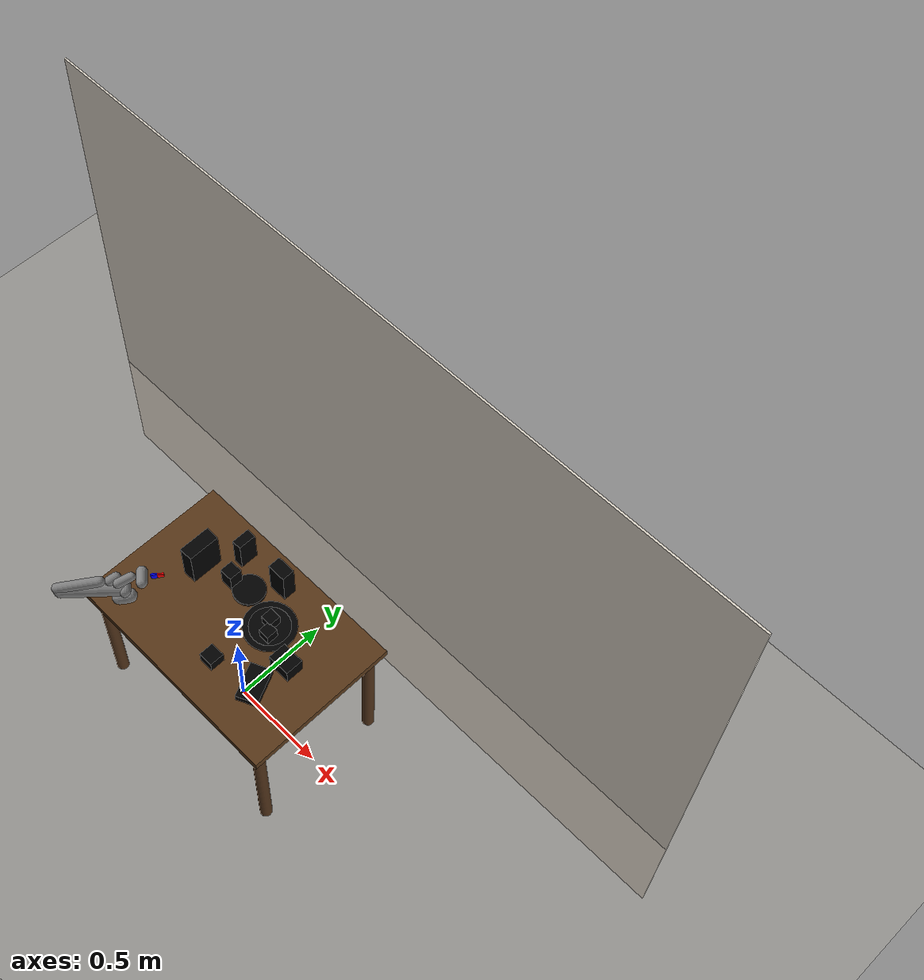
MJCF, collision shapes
<mujoco model="scenecraft_piper">
  <compiler angle="radian"/>
  <option timestep="0.0005" gravity="0 0 -9.81" integrator="implicitfast" cone="elliptic" impratio="10" noslip_iterations="5"/>
  <default>
    <default class="piper">
      <joint armature="0.005" frictionloss="0.3" />
      <general forcerange="-100 100" biastype="affine" biasprm="0 -1" />
      <default class="finger">
        <joint type="slide" frictionloss="0" />
        <general forcerange="-10 10" />
      </default>
      <default class="visual">
        <geom type="mesh" contype="0" conaffinity="0" group="2" density="0" />
      </default>
      <default class="collision">
        <geom type="capsule" group="3" />
      </default>
    </default>
  </default>

  <visual><global offwidth="1920" offheight="1440"/><headlight diffuse="0.55 0.55 0.55" ambient="0.38 0.38 0.38" specular="0.25 0.25 0.25"/><quality shadowsize="4096"/></visual>
  <asset>
    <mesh name="link2_0" content_type="model/obj" file="/root/.openclaw/workspace-lab/scene-gen/data/assets/mujoco_menagerie/agilex_piper/assets/link2_0.obj" />

    <mesh name="link2_1" content_type="model/obj" file="/root/.openclaw/workspace-lab/scene-gen/data/assets/mujoco_menagerie/agilex_piper/assets/link2_1.obj" />

    <mesh name="link2_2" content_type="model/obj" file="/root/.openclaw/workspace-lab/scene-gen/data/assets/mujoco_menagerie/agilex_piper/assets/link2_2.obj" />

    <mesh name="link2_3" content_type="model/obj" file="/root/.openclaw/workspace-lab/scene-gen/data/assets/mujoco_menagerie/agilex_piper/assets/link2_3.obj" />

    <mesh name="link2_4" content_type="model/obj" file="/root/.openclaw/workspace-lab/scene-gen/data/assets/mujoco_menagerie/agilex_piper/assets/link2_4.obj" />

    <mesh name="link2_5" content_type="model/obj" file="/root/.openclaw/workspace-lab/scene-gen/data/assets/mujoco_menagerie/agilex_piper/assets/link2_5.obj" />

    <mesh name="link2_6" content_type="model/obj" file="/root/.openclaw/workspace-lab/scene-gen/data/assets/mujoco_menagerie/agilex_piper/assets/link2_6.obj" />

    <mesh name="link2_7" content_type="model/obj" file="/root/.openclaw/workspace-lab/scene-gen/data/assets/mujoco_menagerie/agilex_piper/assets/link2_7.obj" />

    <mesh name="link2_8" content_type="model/obj" file="/root/.openclaw/workspace-lab/scene-gen/data/assets/mujoco_menagerie/agilex_piper/assets/link2_8.obj" />

    <mesh name="link2_9" content_type="model/obj" file="/root/.openclaw/workspace-lab/scene-gen/data/assets/mujoco_menagerie/agilex_piper/assets/link2_9.obj" />

    <mesh name="link2_10" content_type="model/obj" file="/root/.openclaw/workspace-lab/scene-gen/data/assets/mujoco_menagerie/agilex_piper/assets/link2_10.obj" />

    <mesh name="link2_11" content_type="model/obj" file="/root/.openclaw/workspace-lab/scene-gen/data/assets/mujoco_menagerie/agilex_piper/assets/link2_11.obj" />

    <mesh name="link2_12" content_type="model/obj" file="/root/.openclaw/workspace-lab/scene-gen/data/assets/mujoco_menagerie/agilex_piper/assets/link2_12.obj" />

    <mesh name="link2_13" content_type="model/obj" file="/root/.openclaw/workspace-lab/scene-gen/data/assets/mujoco_menagerie/agilex_piper/assets/link2_13.obj" />

    <mesh name="link2_14" content_type="model/obj" file="/root/.openclaw/workspace-lab/scene-gen/data/assets/mujoco_menagerie/agilex_piper/assets/link2_14.obj" />

    <mesh name="link2_15" content_type="model/obj" file="/root/.openclaw/workspace-lab/scene-gen/data/assets/mujoco_menagerie/agilex_piper/assets/link2_15.obj" />

    <mesh name="link2_16" content_type="model/obj" file="/root/.openclaw/workspace-lab/scene-gen/data/assets/mujoco_menagerie/agilex_piper/assets/link2_16.obj" />

    <mesh name="link2_17" content_type="model/obj" file="/root/.openclaw/workspace-lab/scene-gen/data/assets/mujoco_menagerie/agilex_piper/assets/link2_17.obj" />

    <mesh name="link2_18" content_type="model/obj" file="/root/.openclaw/workspace-lab/scene-gen/data/assets/mujoco_menagerie/agilex_piper/assets/link2_18.obj" />

    <mesh name="link2_19" content_type="model/obj" file="/root/.openclaw/workspace-lab/scene-gen/data/assets/mujoco_menagerie/agilex_piper/assets/link2_19.obj" />

    <mesh name="link2_20" content_type="model/obj" file="/root/.openclaw/workspace-lab/scene-gen/data/assets/mujoco_menagerie/agilex_piper/assets/link2_20.obj" />

    <mesh name="link2_21" content_type="model/obj" file="/root/.openclaw/workspace-lab/scene-gen/data/assets/mujoco_menagerie/agilex_piper/assets/link2_21.obj" />

    <mesh name="link2_22" content_type="model/obj" file="/root/.openclaw/workspace-lab/scene-gen/data/assets/mujoco_menagerie/agilex_piper/assets/link2_22.obj" />

    <mesh name="link2_23" content_type="model/obj" file="/root/.openclaw/workspace-lab/scene-gen/data/assets/mujoco_menagerie/agilex_piper/assets/link2_23.obj" />

    <mesh name="link2_24" content_type="model/obj" file="/root/.openclaw/workspace-lab/scene-gen/data/assets/mujoco_menagerie/agilex_piper/assets/link2_24.obj" />

    <mesh name="link2_25" content_type="model/obj" file="/root/.openclaw/workspace-lab/scene-gen/data/assets/mujoco_menagerie/agilex_piper/assets/link2_25.obj" />

    <mesh name="link2_26" content_type="model/obj" file="/root/.openclaw/workspace-lab/scene-gen/data/assets/mujoco_menagerie/agilex_piper/assets/link2_26.obj" />

    <mesh name="link2_27" content_type="model/obj" file="/root/.openclaw/workspace-lab/scene-gen/data/assets/mujoco_menagerie/agilex_piper/assets/link2_27.obj" />

    <mesh name="link2_28" content_type="model/obj" file="/root/.openclaw/workspace-lab/scene-gen/data/assets/mujoco_menagerie/agilex_piper/assets/link2_28.obj" />

    <mesh name="link2_29" content_type="model/obj" file="/root/.openclaw/workspace-lab/scene-gen/data/assets/mujoco_menagerie/agilex_piper/assets/link2_29.obj" />

    <mesh name="link2_30" content_type="model/obj" file="/root/.openclaw/workspace-lab/scene-gen/data/assets/mujoco_menagerie/agilex_piper/assets/link2_30.obj" />

    <mesh name="link2_31" content_type="model/obj" file="/root/.openclaw/workspace-lab/scene-gen/data/assets/mujoco_menagerie/agilex_piper/assets/link2_31.obj" />

    <mesh name="link3_0" content_type="model/obj" file="/root/.openclaw/workspace-lab/scene-gen/data/assets/mujoco_menagerie/agilex_piper/assets/link3_0.obj" />

    <mesh name="link3_1" content_type="model/obj" file="/root/.openclaw/workspace-lab/scene-gen/data/assets/mujoco_menagerie/agilex_piper/assets/link3_1.obj" />

    <mesh name="link3_2" content_type="model/obj" file="/root/.openclaw/workspace-lab/scene-gen/data/assets/mujoco_menagerie/agilex_piper/assets/link3_2.obj" />

    <mesh name="link3_3" content_type="model/obj" file="/root/.openclaw/workspace-lab/scene-gen/data/assets/mujoco_menagerie/agilex_piper/assets/link3_3.obj" />

    <mesh name="link3_4" content_type="model/obj" file="/root/.openclaw/workspace-lab/scene-gen/data/assets/mujoco_menagerie/agilex_piper/assets/link3_4.obj" />

    <mesh name="link3_5" content_type="model/obj" file="/root/.openclaw/workspace-lab/scene-gen/data/assets/mujoco_menagerie/agilex_piper/assets/link3_5.obj" />

    <mesh name="link3_7" content_type="model/obj" file="/root/.openclaw/workspace-lab/scene-gen/data/assets/mujoco_menagerie/agilex_piper/assets/link3_7.obj" />

    <mesh name="link3_8" content_type="model/obj" file="/root/.openclaw/workspace-lab/scene-gen/data/assets/mujoco_menagerie/agilex_piper/assets/link3_8.obj" />

    <mesh name="link3_9" content_type="model/obj" file="/root/.openclaw/workspace-lab/scene-gen/data/assets/mujoco_menagerie/agilex_piper/assets/link3_9.obj" />

    <mesh name="link3_10" content_type="model/obj" file="/root/.openclaw/workspace-lab/scene-gen/data/assets/mujoco_menagerie/agilex_piper/assets/link3_10.obj" />

    <mesh name="link3_11" content_type="model/obj" file="/root/.openclaw/workspace-lab/scene-gen/data/assets/mujoco_menagerie/agilex_piper/assets/link3_11.obj" />

    <mesh name="link3_12" content_type="model/obj" file="/root/.openclaw/workspace-lab/scene-gen/data/assets/mujoco_menagerie/agilex_piper/assets/link3_12.obj" />

    <mesh name="link3_13" content_type="model/obj" file="/root/.openclaw/workspace-lab/scene-gen/data/assets/mujoco_menagerie/agilex_piper/assets/link3_13.obj" />

    <mesh name="link3_14" content_type="model/obj" file="/root/.openclaw/workspace-lab/scene-gen/data/assets/mujoco_menagerie/agilex_piper/assets/link3_14.obj" />

    <mesh name="link3_15" content_type="model/obj" file="/root/.openclaw/workspace-lab/scene-gen/data/assets/mujoco_menagerie/agilex_piper/assets/link3_15.obj" />

    <mesh name="link3_16" content_type="model/obj" file="/root/.openclaw/workspace-lab/scene-gen/data/assets/mujoco_menagerie/agilex_piper/assets/link3_16.obj" />

    <mesh name="link3_17" content_type="model/obj" file="/root/.openclaw/workspace-lab/scene-gen/data/assets/mujoco_menagerie/agilex_piper/assets/link3_17.obj" />

    <mesh name="link3_18" content_type="model/obj" file="/root/.openclaw/workspace-lab/scene-gen/data/assets/mujoco_menagerie/agilex_piper/assets/link3_18.obj" />

    <mesh name="link3_19" content_type="model/obj" file="/root/.openclaw/workspace-lab/scene-gen/data/assets/mujoco_menagerie/agilex_piper/assets/link3_19.obj" />

    <mesh name="link3_20" content_type="model/obj" file="/root/.openclaw/workspace-lab/scene-gen/data/assets/mujoco_menagerie/agilex_piper/assets/link3_20.obj" />

    <mesh name="link3_21" content_type="model/obj" file="/root/.openclaw/workspace-lab/scene-gen/data/assets/mujoco_menagerie/agilex_piper/assets/link3_21.obj" />

    <mesh name="link3_22" content_type="model/obj" file="/root/.openclaw/workspace-lab/scene-gen/data/assets/mujoco_menagerie/agilex_piper/assets/link3_22.obj" />

    <mesh name="link3_23" content_type="model/obj" file="/root/.openclaw/workspace-lab/scene-gen/data/assets/mujoco_menagerie/agilex_piper/assets/link3_23.obj" />

    <mesh name="link3_24" content_type="model/obj" file="/root/.openclaw/workspace-lab/scene-gen/data/assets/mujoco_menagerie/agilex_piper/assets/link3_24.obj" />

    <mesh name="link3_25" content_type="model/obj" file="/root/.openclaw/workspace-lab/scene-gen/data/assets/mujoco_menagerie/agilex_piper/assets/link3_25.obj" />

    <mesh name="link3_26" content_type="model/obj" file="/root/.openclaw/workspace-lab/scene-gen/data/assets/mujoco_menagerie/agilex_piper/assets/link3_26.obj" />

    <mesh name="link3_27" content_type="model/obj" file="/root/.openclaw/workspace-lab/scene-gen/data/assets/mujoco_menagerie/agilex_piper/assets/link3_27.obj" />

    <mesh name="link3_28" content_type="model/obj" file="/root/.openclaw/workspace-lab/scene-gen/data/assets/mujoco_menagerie/agilex_piper/assets/link3_28.obj" />

    <mesh name="link4_2" content_type="model/obj" file="/root/.openclaw/workspace-lab/scene-gen/data/assets/mujoco_menagerie/agilex_piper/assets/link4_2.obj" />

    <mesh name="link4_3" content_type="model/obj" file="/root/.openclaw/workspace-lab/scene-gen/data/assets/mujoco_menagerie/agilex_piper/assets/link4_3.obj" />

    <mesh name="link4_4" content_type="model/obj" file="/root/.openclaw/workspace-lab/scene-gen/data/assets/mujoco_menagerie/agilex_piper/assets/link4_4.obj" />

    <mesh name="link4_5" content_type="model/obj" file="/root/.openclaw/workspace-lab/scene-gen/data/assets/mujoco_menagerie/agilex_piper/assets/link4_5.obj" />

    <mesh name="link4_6" content_type="model/obj" file="/root/.openclaw/workspace-lab/scene-gen/data/assets/mujoco_menagerie/agilex_piper/assets/link4_6.obj" />

    <mesh name="link5_2" content_type="model/obj" file="/root/.openclaw/workspace-lab/scene-gen/data/assets/mujoco_menagerie/agilex_piper/assets/link5_2.obj" />

    <mesh name="link5_3" content_type="model/obj" file="/root/.openclaw/workspace-lab/scene-gen/data/assets/mujoco_menagerie/agilex_piper/assets/link5_3.obj" />

    <mesh name="link5_4" content_type="model/obj" file="/root/.openclaw/workspace-lab/scene-gen/data/assets/mujoco_menagerie/agilex_piper/assets/link5_4.obj" />

    <mesh name="link5_5" content_type="model/obj" file="/root/.openclaw/workspace-lab/scene-gen/data/assets/mujoco_menagerie/agilex_piper/assets/link5_5.obj" />

    <mesh name="link5_6" content_type="model/obj" file="/root/.openclaw/workspace-lab/scene-gen/data/assets/mujoco_menagerie/agilex_piper/assets/link5_6.obj" />

    <mesh name="link5_7" content_type="model/obj" file="/root/.openclaw/workspace-lab/scene-gen/data/assets/mujoco_menagerie/agilex_piper/assets/link5_7.obj" />

    <mesh name="link5_8" content_type="model/obj" file="/root/.openclaw/workspace-lab/scene-gen/data/assets/mujoco_menagerie/agilex_piper/assets/link5_8.obj" />

    <mesh name="base_link" content_type="model/stl" file="/root/.openclaw/workspace-lab/scene-gen/data/assets/mujoco_menagerie/agilex_piper/assets/base_link.stl" />

    <mesh name="link1" content_type="model/stl" file="/root/.openclaw/workspace-lab/scene-gen/data/assets/mujoco_menagerie/agilex_piper/assets/link1.stl" />

    <mesh name="link2" content_type="model/stl" file="/root/.openclaw/workspace-lab/scene-gen/data/assets/mujoco_menagerie/agilex_piper/assets/link2.stl" />

    <mesh name="link2_gray" content_type="model/stl" file="/root/.openclaw/workspace-lab/scene-gen/data/assets/mujoco_menagerie/agilex_piper/assets/link2_gray.stl" />

    <mesh name="link3" content_type="model/stl" file="/root/.openclaw/workspace-lab/scene-gen/data/assets/mujoco_menagerie/agilex_piper/assets/link3.stl" />

    <mesh name="link4" content_type="model/stl" file="/root/.openclaw/workspace-lab/scene-gen/data/assets/mujoco_menagerie/agilex_piper/assets/link4.stl" />

    <mesh name="link5" content_type="model/stl" file="/root/.openclaw/workspace-lab/scene-gen/data/assets/mujoco_menagerie/agilex_piper/assets/link5.stl" />

    <mesh name="link6" content_type="model/stl" file="/root/.openclaw/workspace-lab/scene-gen/data/assets/mujoco_menagerie/agilex_piper/assets/link6.stl" />

    <mesh name="link7" content_type="model/stl" file="/root/.openclaw/workspace-lab/scene-gen/data/assets/mujoco_menagerie/agilex_piper/assets/link7.stl" />

    <mesh name="link8" content_type="model/stl" file="/root/.openclaw/workspace-lab/scene-gen/data/assets/mujoco_menagerie/agilex_piper/assets/link8.stl" />

    <texture type="skybox" colorspace="auto" builtin="gradient" rgb1="0.3 0.5 0.7" rgb2="0 0 0" width="512" height="3072" />

    <material name="gray_mat" rgba="0.59 0.59 0.59 1" />

    <material name="light_gray_mat" rgba="0.98 0.98 0.98 1" />

    <material name="light_medium_gray_mat" rgba="0.85 0.85 0.85 1" />

    <material name="dark_gray_mat" rgba="0.086 0.086 0.086 1" />

    <material name="darker_gray_mat" rgba="0.14 0.14 0.14 1" />

    <material name="white_mat" />

    <material name="red_mat" rgba="0.82 0.15 0.15 1" />

    <material name="black_mat" rgba="0 0 0 1" />

    <material name="light_blue" rgba="0.79 0.82 0.93 1" />

    <mesh name="ycb_v0" file="/root/.openclaw/workspace-lab/scene-gen/data/assets/ycb/029_plate/029_plate/google_16k/textured.obj"/>
    <texture name="ycb_tex0" type="2d" file="/root/.openclaw/workspace-lab/scene-gen/data/assets/ycb/029_plate/029_plate/google_16k/texture_map.png"/>
    <material name="ycb_m0" texture="ycb_tex0" shininess="0.4" specular="0.25"/>
    <mesh name="ycb_v1" file="/root/.openclaw/workspace-lab/scene-gen/data/assets/ycb/013_apple/013_apple/google_16k/textured.obj"/>
    <texture name="ycb_tex1" type="2d" file="/root/.openclaw/workspace-lab/scene-gen/data/assets/ycb/013_apple/013_apple/google_16k/texture_map.png"/>
    <material name="ycb_m1" texture="ycb_tex1" shininess="0.4" specular="0.25"/>
    <mesh name="ycb_v2" file="/root/.openclaw/workspace-lab/scene-gen/data/assets/ycb/017_orange/017_orange/google_16k/textured.obj"/>
    <texture name="ycb_tex2" type="2d" file="/root/.openclaw/workspace-lab/scene-gen/data/assets/ycb/017_orange/017_orange/google_16k/texture_map.png"/>
    <material name="ycb_m2" texture="ycb_tex2" shininess="0.4" specular="0.25"/>
    <mesh name="ycb_v3" file="/root/.openclaw/workspace-lab/scene-gen/data/assets/ycb/024_bowl/024_bowl/google_16k/textured.obj"/>
    <texture name="ycb_tex3" type="2d" file="/root/.openclaw/workspace-lab/scene-gen/data/assets/ycb/024_bowl/024_bowl/google_16k/texture_map.png"/>
    <material name="ycb_m3" texture="ycb_tex3" shininess="0.4" specular="0.25"/>
    <mesh name="ycb_v4" file="/root/.openclaw/workspace-lab/scene-gen/data/assets/ycb/025_mug/025_mug/google_16k/textured.obj"/>
    <texture name="ycb_tex4" type="2d" file="/root/.openclaw/workspace-lab/scene-gen/data/assets/ycb/025_mug/025_mug/google_16k/texture_map.png"/>
    <material name="ycb_m4" texture="ycb_tex4" shininess="0.4" specular="0.25"/>
    <mesh name="ycb_v5" file="/root/.openclaw/workspace-lab/scene-gen/data/assets/ycb/006_mustard_bottle/006_mustard_bottle/google_16k/textured.obj"/>
    <texture name="ycb_tex5" type="2d" file="/root/.openclaw/workspace-lab/scene-gen/data/assets/ycb/006_mustard_bottle/006_mustard_bottle/google_16k/texture_map.png"/>
    <material name="ycb_m5" texture="ycb_tex5" shininess="0.4" specular="0.25"/>
    <mesh name="ycb_v6" file="/root/.openclaw/workspace-lab/scene-gen/data/assets/ycb/005_tomato_soup_can/005_tomato_soup_can/google_16k/textured.obj"/>
    <texture name="ycb_tex6" type="2d" file="/root/.openclaw/workspace-lab/scene-gen/data/assets/ycb/005_tomato_soup_can/005_tomato_soup_can/google_16k/texture_map.png"/>
    <material name="ycb_m6" texture="ycb_tex6" shininess="0.4" specular="0.25"/>
    <mesh name="ycb_v7" file="/root/.openclaw/workspace-lab/scene-gen/data/assets/ycb/011_banana/011_banana/google_16k/textured.obj"/>
    <texture name="ycb_tex7" type="2d" file="/root/.openclaw/workspace-lab/scene-gen/data/assets/ycb/011_banana/011_banana/google_16k/texture_map.png"/>
    <material name="ycb_m7" texture="ycb_tex7" shininess="0.4" specular="0.25"/>
    <mesh name="ycb_v8" file="/root/.openclaw/workspace-lab/scene-gen/data/assets/ycb/003_cracker_box/003_cracker_box/google_16k/textured.obj"/>
    <texture name="ycb_tex8" type="2d" file="/root/.openclaw/workspace-lab/scene-gen/data/assets/ycb/003_cracker_box/003_cracker_box/google_16k/texture_map.png"/>
    <material name="ycb_m8" texture="ycb_tex8" shininess="0.4" specular="0.25"/>
    <mesh name="ycb_v9" file="/root/.openclaw/workspace-lab/scene-gen/data/assets/ycb/077_rubiks_cube/077_rubiks_cube/google_16k/textured.obj"/>
    <texture name="ycb_tex9" type="2d" file="/root/.openclaw/workspace-lab/scene-gen/data/assets/ycb/077_rubiks_cube/077_rubiks_cube/google_16k/texture_map.png"/>
    <material name="ycb_m9" texture="ycb_tex9" shininess="0.4" specular="0.25"/>
    <mesh name="ycb_v10" file="/root/.openclaw/workspace-lab/scene-gen/data/assets/ycb/004_sugar_box/004_sugar_box/google_16k/textured.obj"/>
    <texture name="ycb_tex10" type="2d" file="/root/.openclaw/workspace-lab/scene-gen/data/assets/ycb/004_sugar_box/004_sugar_box/google_16k/texture_map.png"/>
    <material name="ycb_m10" texture="ycb_tex10" shininess="0.4" specular="0.25"/>
    <texture name="tw" type="2d" builtin="flat" rgb1="0.35 0.22 0.10" rgb2="0.32 0.20 0.08" width="512" height="512" mark="random" markrgb="0.38 0.24 0.12" random="0.03"/>
    <texture name="tf" type="2d" builtin="checker" rgb1="0.75 0.72 0.68" rgb2="0.70 0.67 0.63" width="512" height="512"/>
    <material name="tm" texture="tw" shininess="0.4" specular="0.25" reflectance="0.05"/>
    <material name="fm" texture="tf" shininess="0.12" texrepeat="8 8"/>
    <material name="wm" rgba="0.88 0.85 0.80 1" shininess="0.05"/>
  </asset>
  <worldbody>
    <light pos="0.3 -0.4 2.0" dir="-0.15 0.2 -1" diffuse="0.92 0.87 0.80" castshadow="true"/>
    <light pos="-0.4 0.5 1.8" dir="0.2 -0.25 -1" diffuse="0.35 0.35 0.38"/>
    <light pos="0 -0.3 1.6" dir="0 0.15 -1" diffuse="0.25 0.23 0.22"/>
    <geom name="floor" type="plane" size="3 3 0.01" material="fm" friction="0.8 0.005 0.001"/>
    <geom type="box" size="2 0.005 1.5" pos="0 0.9 0.75" material="wm"/>
    <body name="table" pos="0 0 0.75"><geom type="box" size="0.6 0.4 0.02" material="tm" mass="50" friction="0.8 0.005 0.001" solref="0.002 1" solimp="0.98 0.99 0.001" condim="4"/></body>
    <geom type="cylinder" size="0.03 0.375" pos="0.54 0.34 0.375" rgba="0.32 0.20 0.10 1"/>
    <geom type="cylinder" size="0.03 0.375" pos="-0.54 0.34 0.375" rgba="0.32 0.20 0.10 1"/>
    <geom type="cylinder" size="0.03 0.375" pos="0.54 -0.34 0.375" rgba="0.32 0.20 0.10 1"/>
    <geom type="cylinder" size="0.03 0.375" pos="-0.54 -0.34 0.375" rgba="0.32 0.20 0.10 1"/>
    <body name="base_link" childclass="piper" gravcomp="1" pos="-0.42 -0.28 0.77" quat="0.9063 0 0 0.4226">
      <inertial pos="-0.00979275 1.82906e-06 0.04101" quat="0.692988 -0.137524 -0.137826 0.69416" mass="0.162549" diaginertia="0.000269445 0.000227478 0.000221437" />
      <geom class="visual" material="gray_mat" mesh="base_link" />
      <geom class="collision" size="0.0357691 0.024065" pos="-0.0107422 1.86147e-06 0.0395259" quat="0.536726 0.460902 0.460261 0.536334" />
      <body name="link1" pos="0 0 0.123" quat="0.707105 0 0 -0.707108" gravcomp="1">
        <inertial pos="0.00131676 0.000310289 -0.00922875" quat="0.557105 0.432155 0.377373 0.600388" mass="0.097868" diaginertia="9.25942e-05 8.3083e-05 7.69469e-05" />
        <joint name="joint1" pos="0 0 0" axis="0 0 1" range="-2.618 2.618" />
        <geom class="visual" material="gray_mat" mesh="link1" />
        <geom class="collision" size="0.0271645 0.0182943" pos="0.00101464 -0.000188218 -0.00563398" quat="0.519141 0.484098 0.499512 0.496617" />
        <body name="link2" quat="0.499998 0.5 -0.500002 -0.5" gravcomp="1">
          <inertial pos="0.148794 -0.00242027 0.00175155" quat="-0.0249063 0.70684 0.00803509 0.706889" mass="0.290889" diaginertia="0.00177549 0.00173142 0.00014552" />
          <joint name="joint2" pos="0 0 0" axis="0 0 1" range="0 3.14" />
          <geom class="visual" material="gray_mat" mesh="link2_0" />
          <geom class="visual" material="darker_gray_mat" mesh="link2_1" />
          <geom class="visual" material="darker_gray_mat" mesh="link2_2" />
          <geom class="visual" material="dark_gray_mat" mesh="link2_3" />
          <geom class="visual" material="dark_gray_mat" mesh="link2_4" />
          <geom class="visual" material="red_mat" mesh="link2_5" />
          <geom class="visual" material="dark_gray_mat" mesh="link2_6" />
          <geom class="visual" material="gray_mat" mesh="link2_7" />
          <geom class="visual" material="red_mat" mesh="link2_8" />
          <geom class="visual" material="red_mat" mesh="link2_9" />
          <geom class="visual" material="gray_mat" mesh="link2_10" />
          <geom class="visual" material="red_mat" mesh="link2_11" />
          <geom class="visual" material="red_mat" mesh="link2_12" />
          <geom class="visual" material="red_mat" mesh="link2_13" />
          <geom class="visual" material="red_mat" mesh="link2_14" />
          <geom class="visual" material="red_mat" mesh="link2_15" />
          <geom class="visual" material="red_mat" mesh="link2_16" />
          <geom class="visual" material="red_mat" mesh="link2_17" />
          <geom class="visual" material="red_mat" mesh="link2_18" />
          <geom class="visual" material="red_mat" mesh="link2_19" />
          <geom class="visual" material="red_mat" mesh="link2_20" />
          <geom class="visual" material="gray_mat" mesh="link2_21" />
          <geom class="visual" material="red_mat" mesh="link2_22" />
          <geom class="visual" material="red_mat" mesh="link2_23" />
          <geom class="visual" material="red_mat" mesh="link2_24" />
          <geom class="visual" material="dark_gray_mat" mesh="link2_25" />
          <geom class="visual" material="red_mat" mesh="link2_26" />
          <geom class="visual" material="darker_gray_mat" mesh="link2_27" />
          <geom class="visual" material="darker_gray_mat" mesh="link2_28" />
          <geom class="visual" material="darker_gray_mat" mesh="link2_29" />
          <geom class="visual" material="darker_gray_mat" mesh="link2_30" />
          <geom class="visual" material="light_medium_gray_mat" mesh="link2_31" />
          <geom class="collision" size="0.0354545 0.136662" pos="0.152179 -0.00040773 0.000313761" quat="0.486718 0.483816 0.516937 0.511668" />
          <body name="link3" pos="0.28358 0.028726 0" quat="0.998726 0 0 0.0504536" gravcomp="1">
            <inertial pos="-0.0996835 0.0349477 0.000508026" quat="0.0777021 0.702287 -0.0990541 0.700674" mass="0.290848" diaginertia="0.000241946 0.000222224 0.000100384" />
            <joint name="joint3" pos="0 0 0" axis="0 0 1" range="-2.697 0" />
            <geom class="visual" material="darker_gray_mat" mesh="link3_0" />
            <geom class="visual" material="red_mat" mesh="link3_1" />
            <geom class="visual" material="gray_mat" mesh="link3_2" />
            <geom class="visual" material="gray_mat" mesh="link3_3" />
            <geom class="visual" material="gray_mat" mesh="link3_4" />
            <geom class="visual" material="gray_mat" mesh="link3_5" />
            <geom class="visual" material="darker_gray_mat" mesh="link3_7" />
            <geom class="visual" material="white_mat" mesh="link3_8" />
            <geom class="visual" material="red_mat" mesh="link3_9" />
            <geom class="visual" material="white_mat" mesh="link3_10" />
            <geom class="visual" material="white_mat" mesh="link3_11" />
            <geom class="visual" material="white_mat" mesh="link3_12" />
            <geom class="visual" material="white_mat" mesh="link3_13" />
            <geom class="visual" material="gray_mat" mesh="link3_14" />
            <geom class="visual" material="gray_mat" mesh="link3_15" />
            <geom class="visual" material="gray_mat" mesh="link3_16" />
            <geom class="visual" material="gray_mat" mesh="link3_17" />
            <geom class="visual" material="gray_mat" mesh="link3_18" />
            <geom class="visual" material="gray_mat" mesh="link3_19" />
            <geom class="visual" material="gray_mat" mesh="link3_20" />
            <geom class="visual" material="gray_mat" mesh="link3_21" />
            <geom class="visual" material="gray_mat" mesh="link3_22" />
            <geom class="visual" material="gray_mat" mesh="link3_23" />
            <geom class="visual" material="gray_mat" mesh="link3_24" />
            <geom class="visual" material="gray_mat" mesh="link3_25" />
            <geom class="visual" material="gray_mat" mesh="link3_26" />
            <geom class="visual" material="gray_mat" mesh="link3_27" />
            <geom class="visual" material="gray_mat" mesh="link3_28" />
            <geom class="collision" size="0.0246371 0.102428" pos="-0.0767504 0.02843 0.000535139" quat="0.569519 0.572735 0.410029 0.423674" />
            <body name="link4" pos="-0.24221 0.068514 0" quat="0.544767 -0.544769 -0.450809 0.450808" gravcomp="1">
              <inertial pos="0.000276465 -0.00102804 -0.00472831" quat="0.492305 0.505285 0.503294 0.499017" mass="0.127087" diaginertia="4.87057e-05 4.10595e-05 3.82001e-05" />
              <joint name="joint4" pos="0 0 0" axis="0 0 1" range="-1.832 1.832" />
              <geom class="visual" material="gray_mat" mesh="link4_2" />
              <geom class="visual" material="darker_gray_mat" mesh="link4_3" />
              <geom class="visual" material="gray_mat" mesh="link4_4" />
              <geom class="visual" material="gray_mat" mesh="link4_5" />
              <geom class="visual" material="gray_mat" mesh="link4_6" />
              <geom class="collision" size="0.0238936 0.016908" pos="0.000761852 -0.00691041 -0.0082418" quat="0.955364 0.287171 -0.0612394 0.03258" />
              <body name="link5" quat="0.707105 0.707108 0 0" gravcomp="1">
                <inertial pos="8.82262e-05 0.0566829 -0.0019612" quat="0.507447 0.490986 0.506887 0.494466" mass="0.144711" diaginertia="0.001 0.001 0.001" />
                <joint name="joint5" pos="0 0 0" axis="0 0 1" range="-1.22 1.22" />
                <geom class="visual" material="black_mat" mesh="link5_2" />
                <geom class="visual" material="black_mat" mesh="link5_3" />
                <geom class="visual" material="darker_gray_mat" mesh="link5_4" />
                <geom class="visual" material="gray_mat" mesh="link5_5" />
                <geom class="visual" material="light_gray_mat" mesh="link5_6" />
                <geom class="visual" material="gray_mat" mesh="link5_7" />
                <geom class="visual" material="gray_mat" mesh="link5_8" />
                <geom class="collision" size="0.0224253 0.0337559" pos="0.000165456 0.0435329 -0.00463601" quat="0.351922 0.544329 -0.638336 0.415191" />
                <body name="link6" pos="0 0.091 0.0014165" quat="0 0 -0.707105 -0.707108" gravcomp="1">
                  <inertial pos="0.0010312 0.0121761 0.0315481" quat="0.0230402 0.707091 0.0373344 0.70576" mass="1.2" diaginertia="0.001 0.001 0.001" />
                  <joint name="joint6" pos="0 0 0" axis="0 0 1" range="-3.14 3.14" />
                  <geom class="visual" quat="0.707105 0 0 0.707108" material="gray_mat" mesh="link6" />
                  <geom class="collision" size="0.0264136 0.0296273" pos="-0.000316499 -5.15037e-08 0.0332864" quat="0.00759712 -0.00727331 0.707074 0.707062" />
                  <body name="link7" pos="0 0 0.13503" quat="1.89468e-08 1.89469e-08 0.707108 0.707105" gravcomp="1">
                    <inertial pos="-0.000277778 -0.0467673 -0.00921029" quat="0.46134 0.536174 -0.553273 0.439968" mass="0.0264823" diaginertia="0.001 0.001 0.001" />
                    <joint name="joint7" class="finger" pos="0 0 0" axis="0 0 -1" range="0 0.035" />
                    <geom class="visual" material="gray_mat" mesh="link7" />
                    <geom class="collision" size="0.012 0.015 0.0025" pos="0 -0.015 -0.0025" type="box" rgba="1 0 0 0.2" />
                    <geom class="collision" size="0.015 0.015 0.0025" pos="0 -0.045 -0.0025" type="box" rgba="0 0 1 0.2" />
                  </body>
                  <body name="link8" pos="0 0 0.13503" quat="1.89468e-08 -1.89469e-08 -0.707108 0.707105" gravcomp="1">
                    <inertial pos="0.000277817 0.0467674 -0.0092103" quat="0.553273 0.439968 -0.46134 0.536174" mass="0.0264822" diaginertia="0.001 0.001 0.001" />
                    <joint name="joint8" class="finger" pos="0 0 0" axis="0 0 1" range="-0.035 0" />
                    <geom class="visual" material="gray_mat" mesh="link8" />
                    <geom class="collision" size="0.012 0.015 0.0025" pos="0 0.015 -0.0025" type="box" rgba="1 0 0 0.2" />
                    <geom class="collision" size="0.015 0.015 0.0025" pos="0 0.045 -0.0025" type="box" rgba="0 0 1 0.2" />
                  </body>
                </body>
              </body>
            </body>
          </body>
        </body>
      </body>
    </body>

    <body name="obj_029_plate" pos="0.1500 0.1000 0.77611" quat="1.0000 0 0 0.0000"><freejoint name="ycb_fj0"/><geom name="ycb_vis0" type="mesh" mesh="ycb_v0" material="ycb_m0" contype="0" conaffinity="0" mass="0"/><geom name="ycb_col0" type="cylinder" size="0.13008 0.0019" pos="-0.01162 0.00002 -0.00121" rgba="0 0 0 0" mass="0.1953" friction="0.8 0.005 0.001" solref="0.002 1" solimp="0.98 0.99 0.001" condim="4"/><geom name="ycb_col0b" type="cylinder" size="0.1000 0.0010" pos="-0.01162 0.00002 0.00081" rgba="0 0 0 0" mass="0.08370000000000001" friction="0.8 0.005 0.001" solref="0.004 1" solimp="0.95 0.99 0.001" condim="4"/></body>
    <body name="obj_013_apple" pos="0.1300 0.1200 0.78131" quat="1.0000 0 0 0.0000"><freejoint name="ycb_fj1"/><geom name="ycb_vis1" type="mesh" mesh="ycb_v1" material="ycb_m1" contype="0" conaffinity="0" mass="0"/><geom name="ycb_col1" type="box" size="0.03018 0.02995 0.02876" pos="0.00086 -0.00378 0.02836" rgba="0 0 0 0" mass="0.068" friction="1.0 0.01 0.001" solref="0.004 1" solimp="0.95 0.99 0.001" condim="4"/></body>
    <body name="obj_017_orange" pos="0.1800 0.0800 0.78117" quat="1.0000 0 0 0.0000"><freejoint name="ycb_fj2"/><geom name="ycb_vis2" type="mesh" mesh="ycb_v2" material="ycb_m2" contype="0" conaffinity="0" mass="0"/><geom name="ycb_col2" type="box" size="0.02886 0.02959 0.02854" pos="-0.00694 -0.01836 0.02829" rgba="0 0 0 0" mass="0.047" friction="1.0 0.01 0.001" solref="0.004 1" solimp="0.95 0.99 0.001" condim="4"/></body>
    <body name="obj_024_bowl" pos="-0.0500 0.2000 0.77353" quat="1.0000 0 0 0.0000"><freejoint name="ycb_fj3"/><geom name="ycb_vis3" type="mesh" mesh="ycb_v3" material="ycb_m3" contype="0" conaffinity="0" mass="0"/><geom name="ycb_col3" type="cylinder" size="0.08073 0.0080" pos="-0.01484 -0.04369 0.00747" rgba="0 0 0 0" mass="0.147" friction="0.8 0.005 0.001" solref="0.002 1" solimp="0.98 0.99 0.001" condim="4"/></body>
    <body name="obj_025_mug" pos="0.3500 0.0000 0.77353" quat="1.0000 0 0 0.0000"><freejoint name="ycb_fj4"/><geom name="ycb_vis4" type="mesh" mesh="ycb_v4" material="ycb_m4" contype="0" conaffinity="0" mass="0"/><geom name="ycb_col4" type="box" size="0.05849 0.04657 0.04065" pos="-0.00886 0.01734 0.04012" rgba="0 0 0 0" mass="0.118" friction="0.5 0.005 0.001" solref="0.004 1" solimp="0.95 0.99 0.001" condim="4"/></body>
    <body name="obj_006_mustard_bottle" pos="0.0500 0.3000 0.77615" quat="1.0000 0 0 0.0000"><freejoint name="ycb_fj5"/><geom name="ycb_vis5" type="mesh" mesh="ycb_v5" material="ycb_m5" contype="0" conaffinity="0" mass="0"/><geom name="ycb_col5" type="box" size="0.04860 0.03331 0.09565" pos="-0.01534 -0.02350 0.09250" rgba="0 0 0 0" mass="0.603" friction="0.4 0.005 0.001" solref="0.004 1" solimp="0.95 0.99 0.001" condim="4"/></body>
    <body name="obj_005_tomato_soup_can" pos="-0.1500 0.0500 0.77292" quat="1.0000 0 0 0.0000"><freejoint name="ycb_fj6"/><geom name="ycb_vis6" type="mesh" mesh="ycb_v6" material="ycb_m6" contype="0" conaffinity="0" mass="0"/><geom name="ycb_col6" type="box" size="0.03396 0.03387 0.05093" pos="-0.00917 0.08402 0.05101" rgba="0 0 0 0" mass="0.349" friction="0.5 0.005 0.001" solref="0.004 1" solimp="0.95 0.99 0.001" condim="4"/></body>
    <body name="obj_011_banana" pos="0.3000 -0.1500 0.77341" quat="0.9763 0 0 0.2164"><freejoint name="ycb_fj7"/><geom name="ycb_vis7" type="mesh" mesh="ycb_v7" material="ycb_m7" contype="0" conaffinity="0" mass="0"/><geom name="ycb_col7" type="box" size="0.05447 0.08922 0.01837" pos="0.01148 -0.00734 0.01796" rgba="0 0 0 0" mass="0.066" friction="0.7 0.01 0.001" solref="0.004 1" solimp="0.95 0.99 0.001" condim="4"/></body>
    <body name="obj_003_cracker_box" pos="-0.3000 0.1000 0.77624" quat="1.0000 0 0 0.0000"><freejoint name="ycb_fj8"/><geom name="ycb_vis8" type="mesh" mesh="ycb_v8" material="ycb_m8" contype="0" conaffinity="0" mass="0"/><geom name="ycb_col8" type="box" size="0.03590 0.08202 0.10672" pos="-0.01289 -0.01414 0.10348" rgba="0 0 0 0" mass="0.411" friction="0.6 0.005 0.001" solref="0.004 1" solimp="0.95 0.99 0.001" condim="4"/></body>
    <body name="obj_077_rubiks_cube" pos="0.1000 -0.2000 0.77332" quat="1.0000 0 0 0.0000"><freejoint name="ycb_fj9"/><geom name="ycb_vis9" type="mesh" mesh="ycb_v9" material="ycb_m9" contype="0" conaffinity="0" mass="0"/><geom name="ycb_col9" type="box" size="0.03787 0.03806 0.02897" pos="-0.01610 -0.00050 0.02865" rgba="0 0 0 0" mass="0.091" friction="0.5 0.005 0.001" solref="0.004 1" solimp="0.95 0.99 0.001" condim="4"/></body>
    <body name="obj_004_sugar_box" pos="-0.2000 0.2800 0.77297" quat="1.0000 0 0 0.0000"><freejoint name="ycb_fj10"/><geom name="ycb_vis10" type="mesh" mesh="ycb_v10" material="ycb_m10" contype="0" conaffinity="0" mass="0"/><geom name="ycb_col10" type="box" size="0.02475 0.04708 0.08801" pos="-0.00747 -0.01671 0.08804" rgba="0 0 0 0" mass="0.514" friction="0.6 0.005 0.001" solref="0.004 1" solimp="0.95 0.99 0.001" condim="4"/></body>
  </worldbody>
  <equality>
    <joint joint1="joint8" joint2="joint7" polycoef="0 -1 0 0 0" />
  </equality>

  <actuator>
    <general name="joint1" class="piper" joint="joint1" ctrlrange="-2.618 2.618" gainprm="80" biasprm="0 -80 -5" />
    <general name="joint2" class="piper" joint="joint2" ctrlrange="0 3.14" gainprm="80" biasprm="0 -80 -5" />
    <general name="joint3" class="piper" joint="joint3" ctrlrange="-2.697 0" gainprm="80" biasprm="0 -80 -5" />
    <general name="joint4" class="piper" joint="joint4" ctrlrange="-1.832 1.832" gainprm="40" biasprm="0 -40 -5" />
    <general name="joint5" class="piper" joint="joint5" ctrlrange="-1.22 1.22" gainprm="10" biasprm="0 -10 -1.5" />
    <general name="joint6" class="piper" joint="joint6" ctrlrange="-3.14 3.14" gainprm="10" biasprm="0 -10 -1.5" />
    <general name="gripper" class="finger" joint="joint7" ctrlrange="0 0.035" gainprm="40" biasprm="0 -40 -5" />
  </actuator>

</mujoco>
